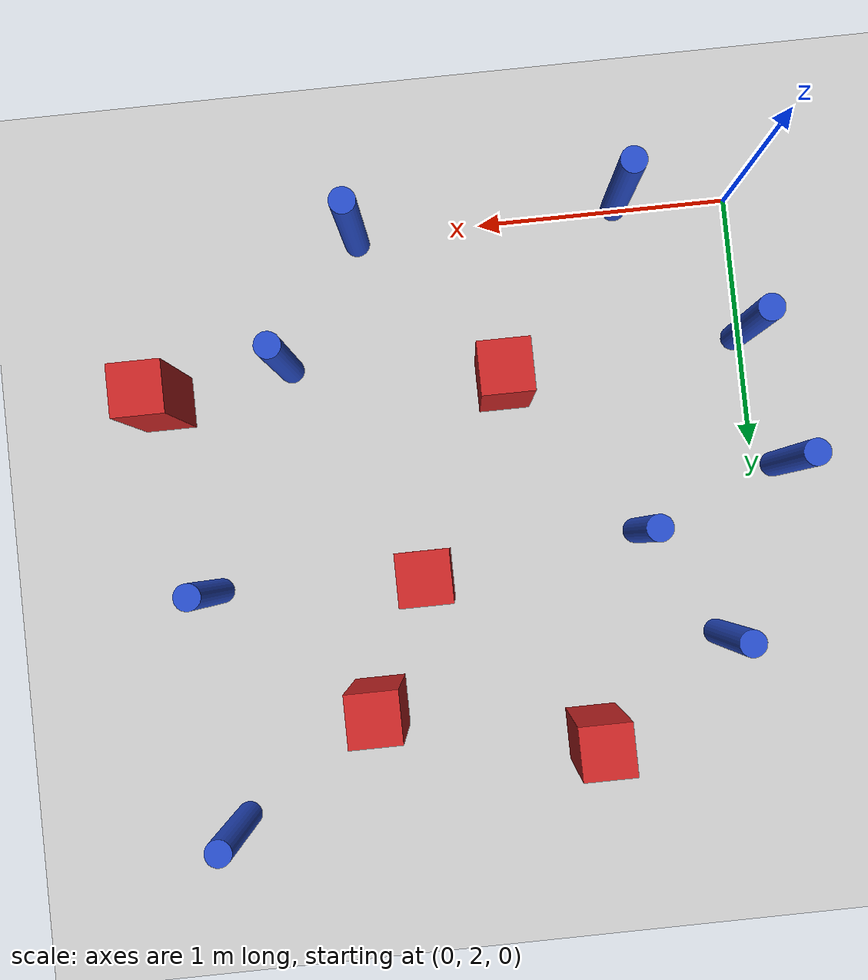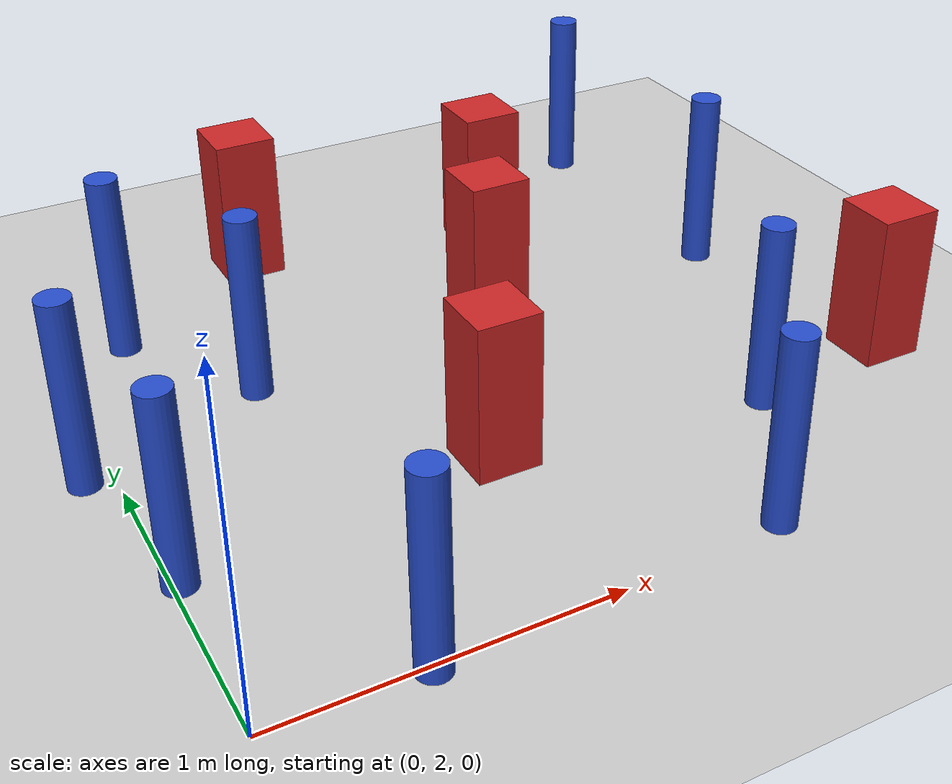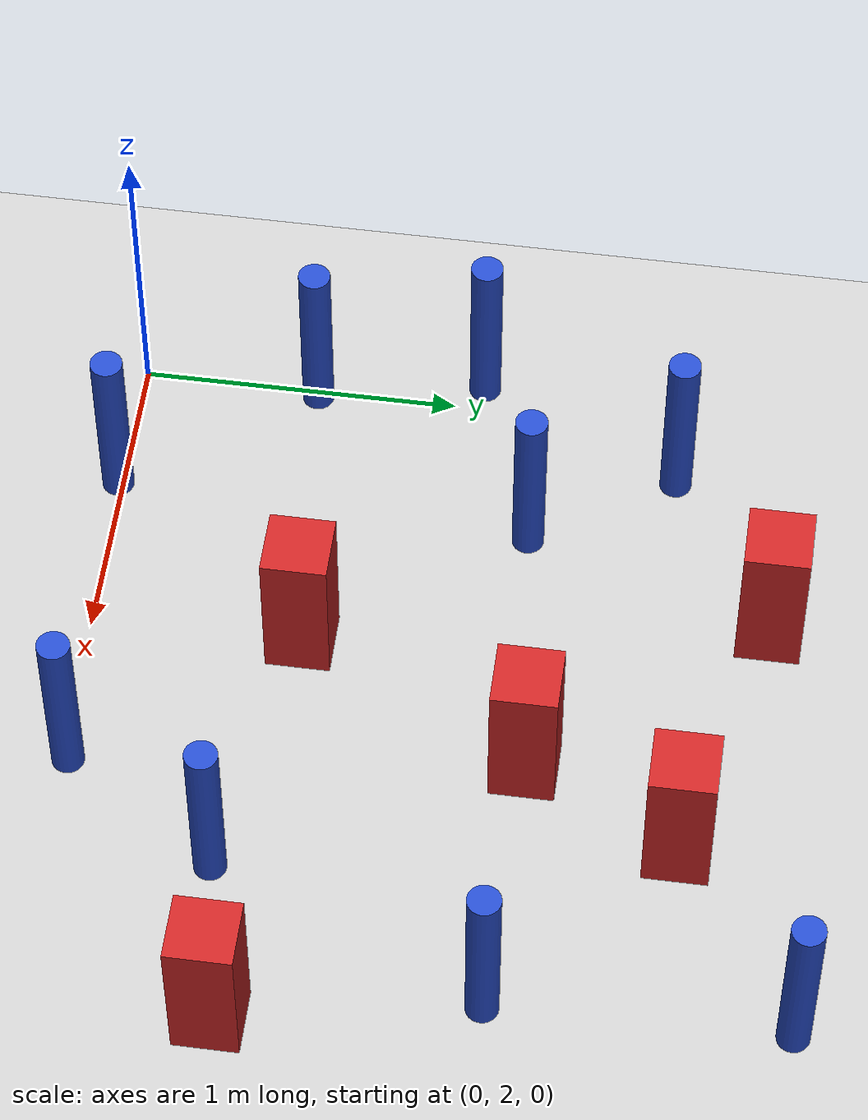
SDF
<sdf version="1.6">
 <world name="default">
  <model name="ground_plane">
   <static>1</static>
   <link name="link">
    <collision name="collision">
     <geometry><plane><normal>0 0 1</normal><size>100 100</size></plane></geometry>
     <surface><friction><ode><mu>100</mu><mu2>50</mu2></ode></friction></surface>
    </collision>
    <visual name="visual">
     <cast_shadows>0</cast_shadows>
     <geometry><plane><normal>0 0 1</normal><size>100 100</size></plane></geometry>
     <material>
      <ambient>1.0 1.0 1.0 1.0</ambient>
      <diffuse>0.8 0.8 0.8 1.0</diffuse>
      <specular>0.01 0.01 0.01 1.000000</specular>
     </material>
    </visual>
   </link>
  </model>
  <model name="square_post_obstacle22">
   <static>true</static>
   <pose>1.5766084047 3.87303385566 -6.11067671241e-07 -5.50515727128e-06 -8.79689657224e-07 2.37013304536e-05</pose>
   <link name="link">
    <pose>0 0 0.25 0 -0 0</pose>
    <inertial>
     <mass>100</mass>
     <inertia>
      <ixx>0.166667</ixx>
      <ixy>0</ixy>
      <ixz>0</ixz>
      <iyy>0.166667</iyy>
      <iyz>0</iyz>
      <izz>0.166667</izz>
     </inertia>
    </inertial>
    <collision name="collision"><geometry><box><size>.2 .2 .5</size></box></geometry></collision>
    <visual name="visual">
     <geometry><box><size>.2 .2 .5</size></box></geometry>
     <material>
      <script><name>Gazebo/Red</name><uri>file://media/materials/scripts/gazebo.material</uri></script>
     </material>
    </visual>
   </link>
  </model>
  <model name="square_post_obstacle30">
   <static>true</static>
   <pose>2.31409844909 2.59847016423 -6.11067671241e-07 -5.50515727128e-06 -8.79689657224e-07 2.37013304536e-05</pose>
   <link name="link">
    <pose>0 0 0.25 0 -0 0</pose>
    <inertial>
     <mass>100</mass>
     <inertia>
      <ixx>0.166667</ixx>
      <ixy>0</ixy>
      <ixz>0</ixz>
      <iyy>0.166667</iyy>
      <iyz>0</iyz>
      <izz>0.166667</izz>
     </inertia>
    </inertial>
    <collision name="collision"><geometry><box><size>.2 .2 .5</size></box></geometry></collision>
    <visual name="visual">
     <geometry><box><size>.2 .2 .5</size></box></geometry>
     <material>
      <script><name>Gazebo/Red</name><uri>file://media/materials/scripts/gazebo.material</uri></script>
     </material>
    </visual>
   </link>
  </model>
  <model name="pole_obstacle42">
   <static>true</static>
   <pose>0.0202788030529 2.55956008532 -9.47619616065e-06 5.49618799737e-07 2.36310414066e-07 -1.55090534795e-07</pose>
   <link name="link">
    <pose>0 0 0.3 0 -0 0</pose>
    <inertial>
     <mass>1</mass>
     <inertia><ixx>0.145833</ixx><ixy>0</ixy><ixz>0</ixz><iyy>0.145833</iyy><iyz>0</iyz><izz>0.125</izz></inertia>
    </inertial>
    <collision name="collision">
     <geometry><cylinder><radius>0.05</radius><length>.6</length></cylinder></geometry>
    </collision>
    <visual name="visual">
     <geometry><cylinder><radius>0.05</radius><length>.6</length></cylinder></geometry>
     <material>
      <script><name>Gazebo/Blue</name><uri>file://media/materials/scripts/gazebo.material</uri></script>
     </material>
    </visual>
   </link>
  </model>
  <model name="pole_obstacle53">
   <static>true</static>
   <pose>1.4944517951 2.02455784514 -9.47619616065e-06 5.49618799737e-07 2.36310414052e-07 -1.55090534804e-07</pose>
   <link name="link">
    <pose>0 0 0.3 0 -0 0</pose>
    <inertial>
     <mass>1</mass>
     <inertia><ixx>0.145833</ixx><ixy>0</ixy><ixz>0</ixz><iyy>0.145833</iyy><iyz>0</iyz><izz>0.125</izz></inertia>
    </inertial>
    <collision name="collision">
     <geometry><cylinder><radius>0.05</radius><length>.6</length></cylinder></geometry>
    </collision>
    <visual name="visual">
     <geometry><cylinder><radius>0.05</radius><length>.6</length></cylinder></geometry>
     <material>
      <script><name>Gazebo/Blue</name><uri>file://media/materials/scripts/gazebo.material</uri></script>
     </material>
    </visual>
   </link>
  </model>
  <model name="pole_obstacle66">
   <static>true</static>
   <pose>1.80842460372 2.5107694685 -9.47619616065e-06 5.49618799737e-07 2.36310414062e-07 -1.55090534798e-07</pose>
   <link name="link">
    <pose>0 0 0.3 0 -0 0</pose>
    <inertial>
     <mass>1</mass>
     <inertia><ixx>0.145833</ixx><ixy>0</ixy><ixz>0</ixz><iyy>0.145833</iyy><iyz>0</iyz><izz>0.125</izz></inertia>
    </inertial>
    <collision name="collision">
     <geometry><cylinder><radius>0.05</radius><length>.6</length></cylinder></geometry>
    </collision>
    <visual name="visual">
     <geometry><cylinder><radius>0.05</radius><length>.6</length></cylinder></geometry>
     <material>
      <script><name>Gazebo/Blue</name><uri>file://media/materials/scripts/gazebo.material</uri></script>
     </material>
    </visual>
   </link>
  </model>
  <model name="pole_obstacle74">
   <static>true</static>
   <pose>-0.0822452410296 3.08621470215 -9.47619616065e-06 5.49618799737e-07 2.36310414067e-07 -1.55090534797e-07</pose>
   <link name="link">
    <pose>0 0 0.3 0 -0 0</pose>
    <inertial>
     <mass>1</mass>
     <inertia><ixx>0.145833</ixx><ixy>0</ixy><ixz>0</ixz><iyy>0.145833</iyy><iyz>0</iyz><izz>0.125</izz></inertia>
    </inertial>
    <collision name="collision">
     <geometry><cylinder><radius>0.05</radius><length>.6</length></cylinder></geometry>
    </collision>
    <visual name="visual">
     <geometry><cylinder><radius>0.05</radius><length>.6</length></cylinder></geometry>
     <material>
      <script><name>Gazebo/Blue</name><uri>file://media/materials/scripts/gazebo.material</uri></script>
     </material>
    </visual>
   </link>
  </model>
  <model name="square_post_obstacle84">
   <static>true</static>
   <pose>0.752339263811 4.07348924522 -6.11067671241e-07 -5.50515727128e-06 -8.79689657224e-07 2.37013304536e-05</pose>
   <link name="link">
    <pose>0 0 0.25 0 -0 0</pose>
    <inertial>
     <mass>100</mass>
     <inertia>
      <ixx>0.166667</ixx>
      <ixy>0</ixy>
      <ixz>0</ixz>
      <iyy>0.166667</iyy>
      <iyz>0</iyz>
      <izz>0.166667</izz>
     </inertia>
    </inertial>
    <collision name="collision"><geometry><box><size>.2 .2 .5</size></box></geometry></collision>
    <visual name="visual">
     <geometry><box><size>.2 .2 .5</size></box></geometry>
     <material>
      <script><name>Gazebo/Red</name><uri>file://media/materials/scripts/gazebo.material</uri></script>
     </material>
    </visual>
   </link>
  </model>
  <model name="pole_obstacle111">
   <static>true</static>
   <pose>2.17376053232 3.366848373 -9.47619616065e-06 5.49618799737e-07 2.36310414051e-07 -1.55090534807e-07</pose>
   <link name="link">
    <pose>0 0 0.3 0 -0 0</pose>
    <inertial>
     <mass>1</mass>
     <inertia><ixx>0.145833</ixx><ixy>0</ixy><ixz>0</ixz><iyy>0.145833</iyy><iyz>0</iyz><izz>0.125</izz></inertia>
    </inertial>
    <collision name="collision">
     <geometry><cylinder><radius>0.05</radius><length>.6</length></cylinder></geometry>
    </collision>
    <visual name="visual">
     <geometry><cylinder><radius>0.05</radius><length>.6</length></cylinder></geometry>
     <material>
      <script><name>Gazebo/Blue</name><uri>file://media/materials/scripts/gazebo.material</uri></script>
     </material>
    </visual>
   </link>
  </model>
  <model name="pole_obstacle129">
   <static>true</static>
   <pose>0.497629618551 3.29525581711 -9.47619616065e-06 5.49618799738e-07 2.36310414066e-07 -1.55090534797e-07</pose>
   <link name="link">
    <pose>0 0 0.3 0 -0 0</pose>
    <inertial>
     <mass>1</mass>
     <inertia><ixx>0.145833</ixx><ixy>0</ixy><ixz>0</ixz><iyy>0.145833</iyy><iyz>0</iyz><izz>0.125</izz></inertia>
    </inertial>
    <collision name="collision">
     <geometry><cylinder><radius>0.05</radius><length>.6</length></cylinder></geometry>
    </collision>
    <visual name="visual">
     <geometry><cylinder><radius>0.05</radius><length>.6</length></cylinder></geometry>
     <material>
      <script><name>Gazebo/Blue</name><uri>file://media/materials/scripts/gazebo.material</uri></script>
     </material>
    </visual>
   </link>
  </model>
  <model name="square_post_obstacle134">
   <static>true</static>
   <pose>0.971050024841 2.65492418503 -6.11067671241e-07 -5.50515727128e-06 -8.79689657224e-07 2.37013304536e-05</pose>
   <link name="link">
    <pose>0 0 0.25 0 -0 0</pose>
    <inertial>
     <mass>100</mass>
     <inertia>
      <ixx>0.166667</ixx>
      <ixy>0</ixy>
      <ixz>0</ixz>
      <iyy>0.166667</iyy>
      <iyz>0</iyz>
      <izz>0.166667</izz>
     </inertia>
    </inertial>
    <collision name="collision"><geometry><box><size>.2 .2 .5</size></box></geometry></collision>
    <visual name="visual">
     <geometry><box><size>.2 .2 .5</size></box></geometry>
     <material>
      <script><name>Gazebo/Red</name><uri>file://media/materials/scripts/gazebo.material</uri></script>
     </material>
    </visual>
   </link>
  </model>
  <model name="pole_obstacle158">
   <static>true</static>
   <pose>0.217707957268 3.73100058126 -9.4761961606e-06 5.49618799729e-07 2.36310413995e-07 -1.55090534826e-07</pose>
   <link name="link">
    <pose>0 0 0.3 0 -0 0</pose>
    <inertial>
     <mass>1</mass>
     <inertia><ixx>0.145833</ixx><ixy>0</ixy><ixz>0</ixz><iyy>0.145833</iyy><iyz>0</iyz><izz>0.125</izz></inertia>
    </inertial>
    <collision name="collision">
     <geometry><cylinder><radius>0.05</radius><length>.6</length></cylinder></geometry>
    </collision>
    <visual name="visual">
     <geometry><cylinder><radius>0.05</radius><length>.6</length></cylinder></geometry>
     <material>
      <script><name>Gazebo/Blue</name><uri>file://media/materials/scripts/gazebo.material</uri></script>
     </material>
    </visual>
   </link>
  </model>
  <model name="pole_obstacle214">
   <static>true</static>
   <pose>2.14942849264 4.26308721409 -9.47619616065e-06 5.49618799738e-07 2.3631041406e-07 -1.55090534801e-07</pose>
   <link name="link">
    <pose>0 0 0.3 0 -0 0</pose>
    <inertial>
     <mass>1</mass>
     <inertia><ixx>0.145833</ixx><ixy>0</ixy><ixz>0</ixz><iyy>0.145833</iyy><iyz>0</iyz><izz>0.125</izz></inertia>
    </inertial>
    <collision name="collision">
     <geometry><cylinder><radius>0.05</radius><length>.6</length></cylinder></geometry>
    </collision>
    <visual name="visual">
     <geometry><cylinder><radius>0.05</radius><length>.6</length></cylinder></geometry>
     <material>
      <script><name>Gazebo/Blue</name><uri>file://media/materials/scripts/gazebo.material</uri></script>
     </material>
    </visual>
   </link>
  </model>
  <model name="pole_obstacle225">
   <static>true</static>
   <pose>0.447992725939 1.98540669343 -9.47619616065e-06 5.49618799737e-07 2.36310414059e-07 -1.550905348e-07</pose>
   <link name="link">
    <pose>0 0 0.3 0 -0 0</pose>
    <inertial>
     <mass>1</mass>
     <inertia><ixx>0.145833</ixx><ixy>0</ixy><ixz>0</ixz><iyy>0.145833</iyy><iyz>0</iyz><izz>0.125</izz></inertia>
    </inertial>
    <collision name="collision">
     <geometry><cylinder><radius>0.05</radius><length>.6</length></cylinder></geometry>
    </collision>
    <visual name="visual">
     <geometry><cylinder><radius>0.05</radius><length>.6</length></cylinder></geometry>
     <material>
      <script><name>Gazebo/Blue</name><uri>file://media/materials/scripts/gazebo.material</uri></script>
     </material>
    </visual>
   </link>
  </model>
  <model name="square_post_obstacle200">
   <static>true</static>
   <pose>1.3448599502 3.38877997688 -6.11067671241e-07 -5.50515727128e-06 -8.79689657224e-07 2.37013304536e-05</pose>
   <link name="link">
    <pose>0 0 0.25 0 -0 0</pose>
    <inertial>
     <mass>100</mass>
     <inertia>
      <ixx>0.166667</ixx>
      <ixy>0</ixy>
      <ixz>0</ixz>
      <iyy>0.166667</iyy>
      <iyz>0</iyz>
      <izz>0.166667</izz>
     </inertia>
    </inertial>
    <collision name="collision"><geometry><box><size>.2 .2 .5</size></box></geometry></collision>
    <visual name="visual">
     <geometry><box><size>.2 .2 .5</size></box></geometry>
     <material>
      <script><name>Gazebo/Red</name><uri>file://media/materials/scripts/gazebo.material</uri></script>
     </material>
    </visual>
   </link>
  </model>
 </world>
</sdf>
